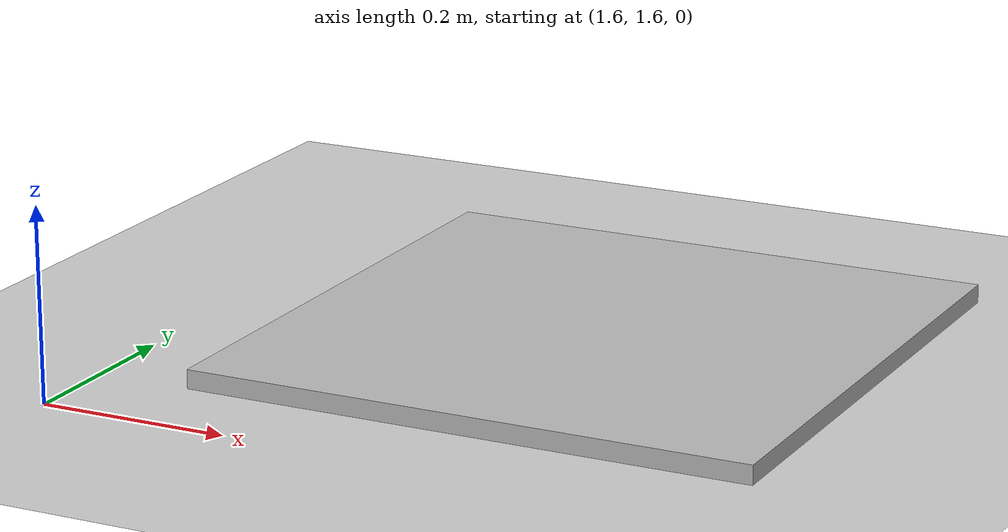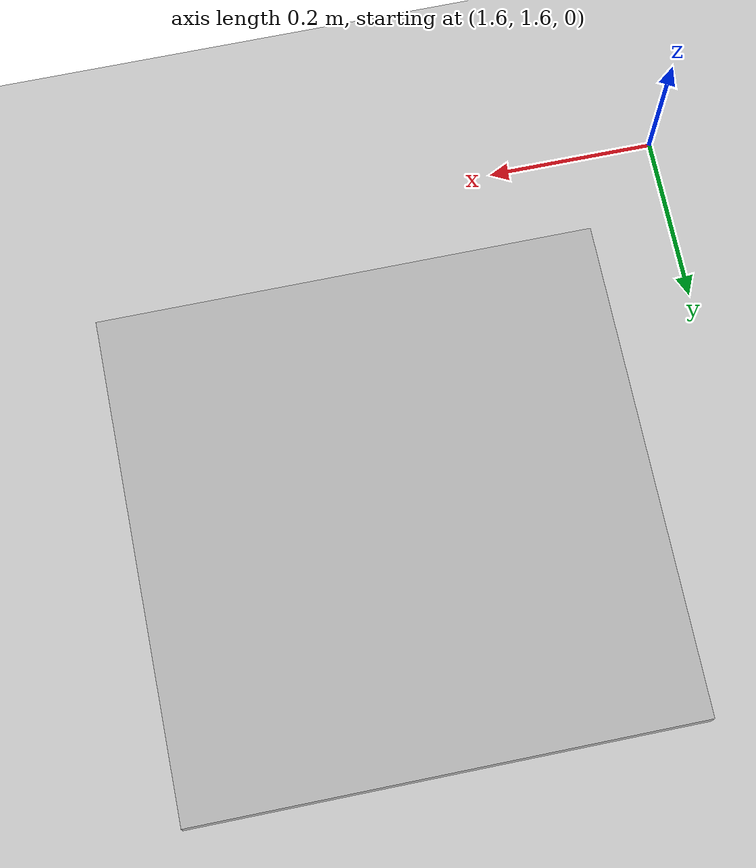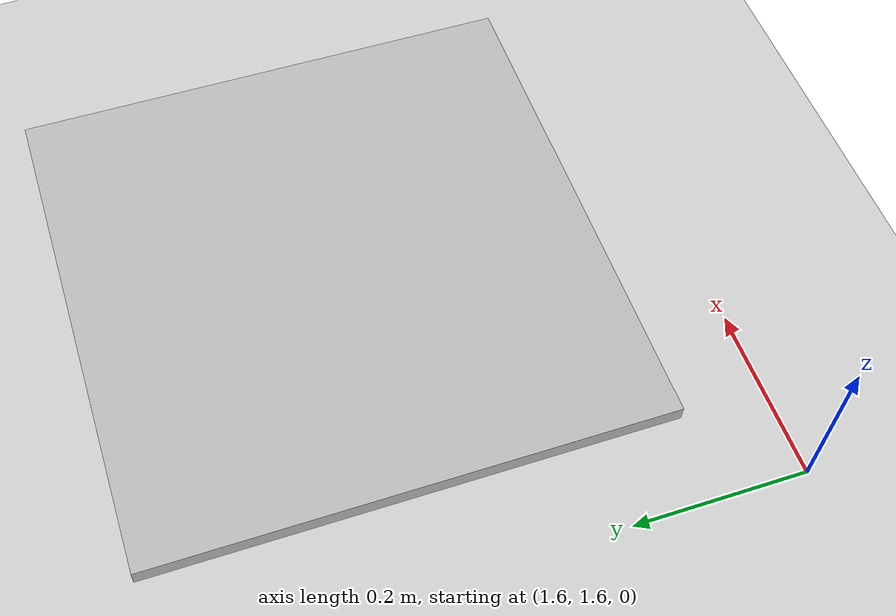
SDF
<?xml version="1.0" ?>
<sdf version="1.6">
  <world name="landing_pad_H">
    <!-- A global light source -->
    <include>
      <uri>model://sun</uri>
    </include>
    <!-- A ground plane -->
    <include>
      <uri>model://ground_plane</uri>
    </include>
    <model name='landing_pad_H'>
      <include>
        <uri>model://landing_pad_H</uri>
	      <pose> 2 2 0.01 0 0 -1.5707963 </pose>
      </include>
    </model>
    <physics name='default_physics' default='0' type='ode'>
      <gravity>0 0 -9.8066</gravity>
      <ode>
        <solver>
          <type>quick</type>
          <iters>150</iters>
          <sor>1.3</sor>
          <use_dynamic_moi_rescaling>0</use_dynamic_moi_rescaling>
        </solver>
        <constraints>
          <cfm>0.00001</cfm>
          <erp>0.2</erp>
          <contact_max_correcting_vel>1000</contact_max_correcting_vel>
          <contact_surface_layer>0.01</contact_surface_layer>
        </constraints>
      </ode>
      <max_step_size>0.004</max_step_size>
      <real_time_factor>1000.0</real_time_factor>
      <real_time_update_rate>250</real_time_update_rate>
      <magnetic_field>6.0e-6 2.3e-5 -4.2e-5</magnetic_field>
    </physics>
  </world>
</sdf>

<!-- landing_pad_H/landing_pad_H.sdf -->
<sdf version="1.6">
  <model name="landing_pad_H">
    <pose>0 0 0.01 0 0 0</pose>
    <static>true</static>
    <link name="link">
      <inertial>
        <mass>0.5</mass>
        <inertia>
          <ixx>0.001</ixx>
          <ixy>0</ixy>
          <ixz>0</ixz>
          <iyy>0.001</iyy>
          <iyz>0</iyz>
          <izz>0.001</izz>
        </inertia>
      </inertial>
      <collision name="collision">
        <geometry>
          <box>
            <size>0.6 0.6 0.02</size>
          </box>
        </geometry>
      </collision>
      <visual name="visual">
        <geometry>
          <box>
            <size>0.6 0.6 0.02</size>
          </box>
        </geometry>
        <material>
          <script>
            <uri>model://landing_pad_H/materials/scripts</uri>
	          <uri>model://landing_pad_H/materials/textures</uri>
            <name>Cube/landing_pad_H</name>
          </script>
        </material>
      </visual>
    </link>

    <plugin name="p3d_base_controller" filename="libgazebo_ros_p3d.so">
      <alwaysOn>true</alwaysOn>
      <updateRate>30.0</updateRate>
      <bodyName>link</bodyName>
      <topicName>ground_truth/landing_pad</topicName>
      <gaussianNoise>0.00</gaussianNoise>
      <frameName>world</frameName>
      <xyzOffsets>0 0 0</xyzOffsets>
      <rpyOffsets>0 0 0</rpyOffsets>
    </plugin>
  </model>
</sdf>
